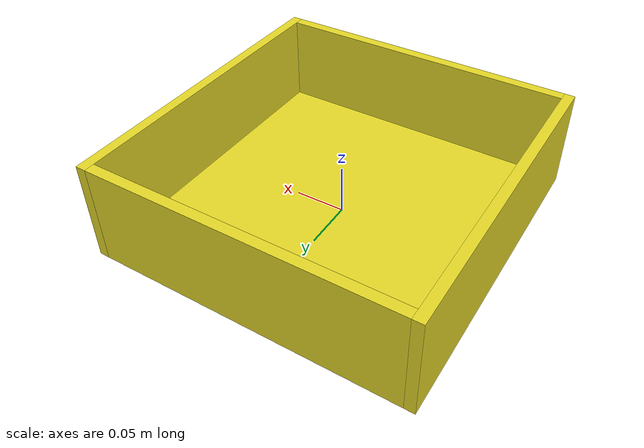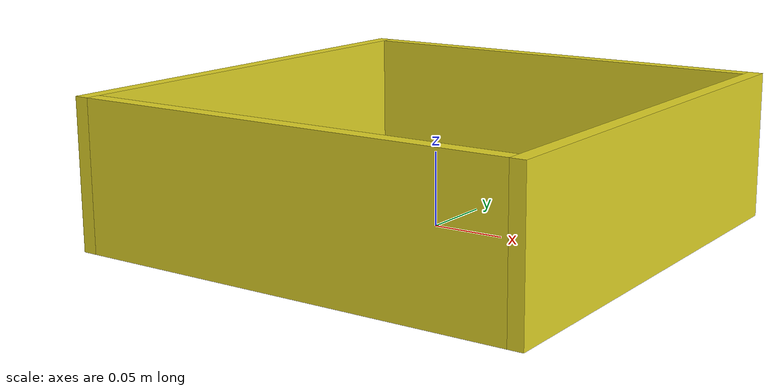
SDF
<?xml version="1.0" ?>
<sdf version='1.4'>
  <model name='yellow_container'>
      <static>0</static>
      <link name='link'>
        <inertial>
          <mass>10.0</mass>
          <inertia>
            <ixx>0.000000</ixx>
            <ixy>0.000000</ixy>
            <ixz>0.000000</ixz>
            <iyy>0.000000</iyy>
            <iyz>0.000000</iyz>
            <izz>0.000000</izz>
          </inertia>
        </inertial>
        <collision name="bottom">
          <pose>0 0 0 0 0 0</pose>
          <geometry>
            <box>
              <size>0.3 0.3 0.01</size>
            </box>
          </geometry>
          <surface>
            <bounce/>
            <friction>
              <ode/>
            </friction>
            <contact>
              <ode/>
            </contact>
          </surface>
        </collision>
        <visual name="bottom">
          <pose>0 0 0 0 0 0</pose>
          <geometry>
            <box>
              <size>0.3 0.3 0.01</size>
            </box>
          </geometry>
          <material>
            <script>
              <uri>file://media/materials/scripts/gazebo.material</uri>
              <name>Gazebo/DarkYellow</name>
            </script>
          </material>
        </visual>

        <collision name="x">
          <pose>0.155 0 0.045 0 0 0</pose>
          <geometry>
            <box>
              <size>0.01 0.32 0.1</size>
            </box>
          </geometry>
          <surface>
            <bounce/>
            <friction>
              <ode/>
            </friction>
            <contact>
              <ode/>
            </contact>
          </surface>
        </collision>
        <visual name="x">
          <pose>0.155 0 0.045 0 0 0</pose>
          <geometry>
            <box>
              <size>0.01 0.32 0.1</size>
            </box>
          </geometry>
          <material>
            <script>
              <uri>file://media/materials/scripts/gazebo.material</uri>
              <name>Gazebo/DarkYellow</name>
            </script>
          </material>
        </visual>

        <collision name="-x">
          <pose>-0.155 0 0.045 0 0 0</pose>
          <geometry>
            <box>
              <size>0.01 0.32 0.1</size>
            </box>
          </geometry>
          <surface>
            <bounce/>
            <friction>
              <ode/>
            </friction>
            <contact>
              <ode/>
            </contact>
          </surface>
        </collision>
        <visual name="-x">
          <pose>-0.155 0 0.045 0 0 0</pose>
          <geometry>
            <box>
              <size>0.01 0.32 0.1</size>
            </box>
          </geometry>
          <material>
            <script>
              <uri>file://media/materials/scripts/gazebo.material</uri>
              <name>Gazebo/DarkYellow</name>
            </script>
          </material>
        </visual>

        <collision name="y">
          <pose>0 0.155 0.045 0 0 0</pose>
          <geometry>
            <box>
              <size>0.3 0.01 0.1</size>
            </box>
          </geometry>
          <surface>
            <bounce/>
            <friction>
              <ode/>
            </friction>
            <contact>
              <ode/>
            </contact>
          </surface>
        </collision>
        <visual name="y">
          <pose>0 0.155 0.045 0 0 0</pose>
          <geometry>
            <box>
              <size>0.3 0.01 0.1</size>
            </box>
          </geometry>
          <material>
            <script>
              <uri>file://media/materials/scripts/gazebo.material</uri>
              <name>Gazebo/DarkYellow</name>
            </script>
          </material>
        </visual>

        <collision name="-y">
          <pose>0 -0.155 0.045 0 0 0</pose>
          <geometry>
            <box>
              <size>0.3 0.01 0.1</size>
            </box>
          </geometry>
          <surface>
            <bounce/>
            <friction>
              <ode/>
            </friction>
            <contact>
              <ode/>
            </contact>
          </surface>
        </collision>
        <visual name="-y">
          <pose>0 -0.155 0.045 0 0 0</pose>
          <geometry>
            <box>
              <size>0.3 0.01 0.1</size>
            </box>
          </geometry>
          <material>
            <script>
              <uri>file://media/materials/scripts/gazebo.material</uri>
              <name>Gazebo/DarkYellow</name>
            </script>
          </material>
        </visual>

        <velocity_decay>
          <linear>0.000000</linear>
          <angular>0.000000</angular>
        </velocity_decay>
        <self_collide>0</self_collide>
        <kinematic>0</kinematic>
        <gravity>1</gravity>
      </link>
  </model>
</sdf>
